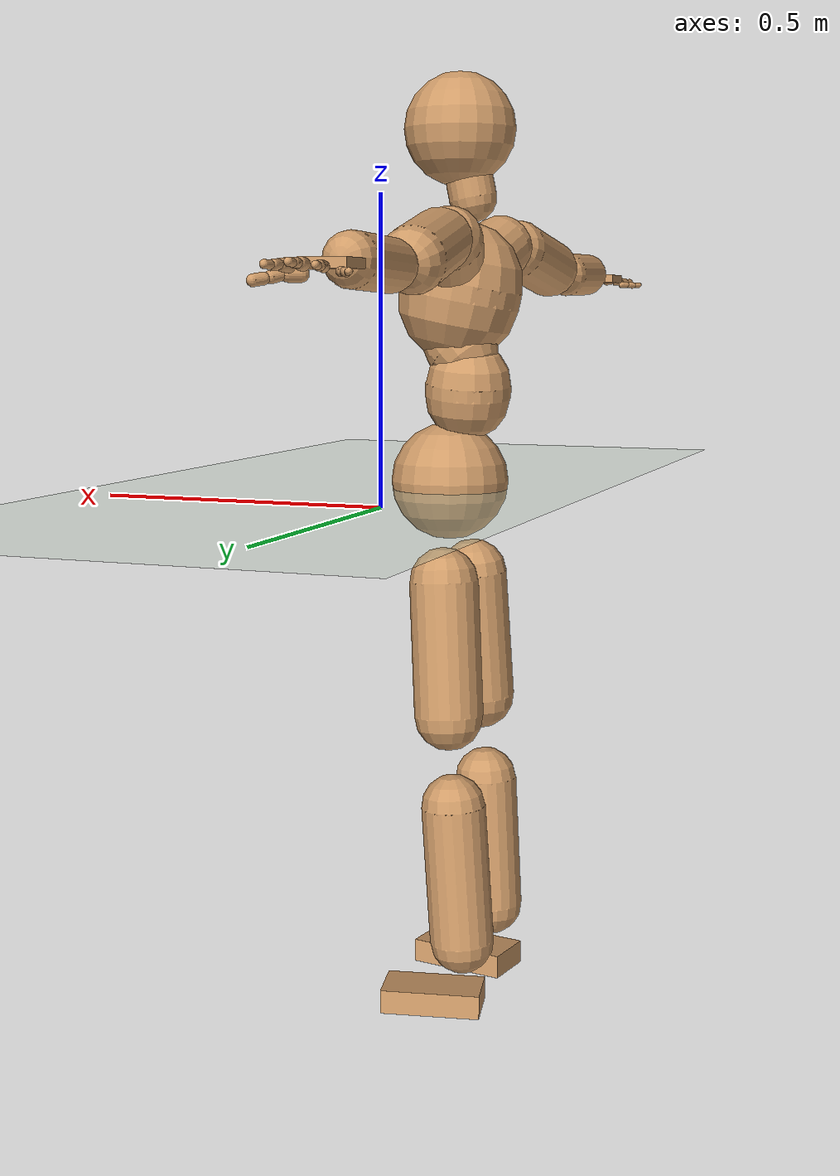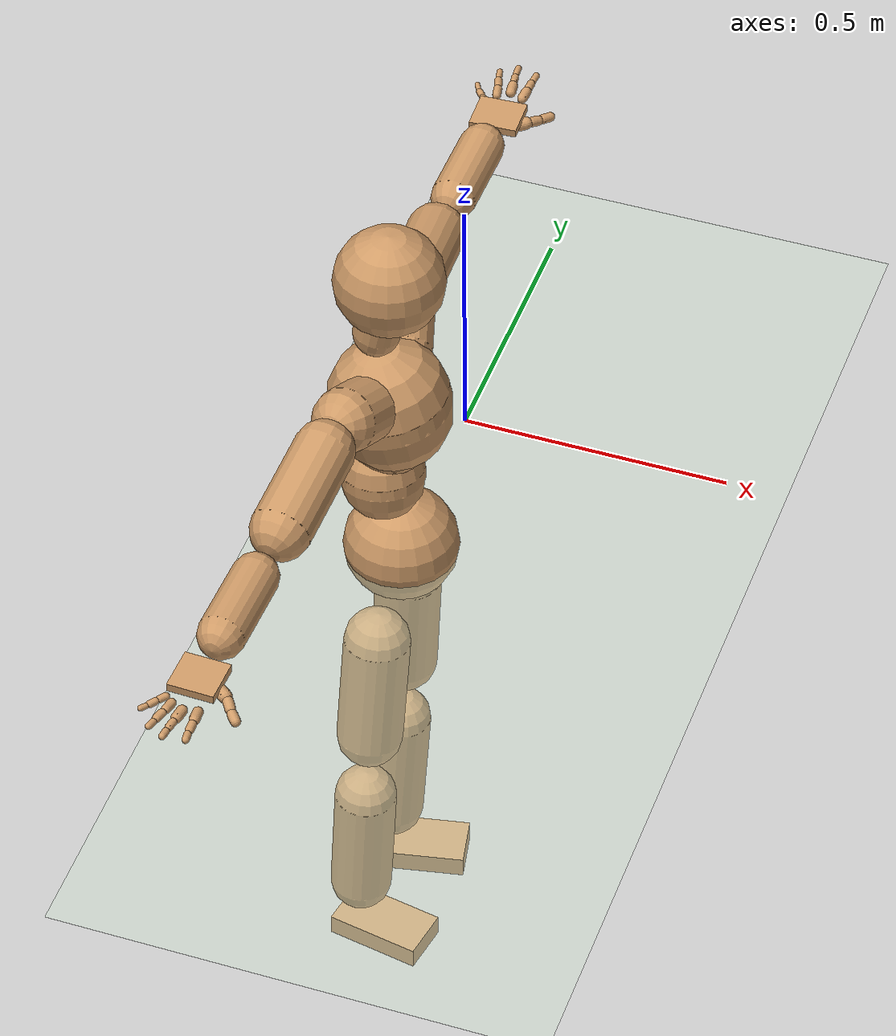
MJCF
<mujoco model="humanoid">
  <compiler coordinate="local" angle="radian"/>
  <default>
    <joint damping="0.0" armature="0.01" stiffness="0.0" limited="true"/>
    <geom conaffinity="1" condim="3" contype="7" margin="0.001" rgba="0.8 0.6 .4 1"/>
  </default>
  <asset>
    <texture type="skybox" builtin="gradient" rgb1=".4 .5 .6" rgb2="0 0 0" width="100" height="100"/>
    <texture builtin="flat" height="1278" mark="cross" markrgb="1 1 1" name="texgeom" random="0.01" rgb1="0.8 0.6 0.4" rgb2="0.8 0.6 0.4" type="cube" width="127"/>
    <texture builtin="checker" height="100" name="texplane" rgb1="0 0 0" rgb2="0.8 0.8 0.8" type="2d" width="100"/>
    <material name="MatPlane" reflectance="0.5" shininess="1" specular="1" texrepeat="60 60" texture="texplane"/>
    <material name="geom" texture="texgeom" texuniform="true"/>
  </asset>
  <worldbody>
    <light cutoff="100" diffuse="1 1 1" dir="-0 0 -1.3" directional="true" exponent="1" pos="0 0 1.3" specular=".1 .1 .1"/>
    <geom conaffinity="1" condim="3" name="floor" pos="0 0 0" rgba="0.8 0.9 0.8 1" size="100 100 .2" type="plane" material="MatPlane"/>
    <body name="Pelvis" pos="0.0005 -0.3438 0.0123">
      <freejoint name="Pelvis"/>
      <geom type="sphere" contype="1" conaffinity="1" density="500" size="0.1051" pos="0.0000 0.0000 0.0000" name="Pelvis"/>
      <body name="L_Hip" pos="-0.0133 0.0787 -0.0914">
        <joint name="L_Hip_x" type="hinge" pos="0 0 0" axis="1 0 0" stiffness="800" damping="80" armature="0.02" range="-180.0000 180.0000"/>
        <joint name="L_Hip_y" type="hinge" pos="0 0 0" axis="0 1 0" stiffness="800" damping="80" armature="0.02" range="-180.0000 180.0000"/>
        <joint name="L_Hip_z" type="hinge" pos="0 0 0" axis="0 0 1" stiffness="800" damping="80" armature="0.02" range="-180.0000 180.0000"/>
        <geom type="capsule" contype="1" conaffinity="1" density="500" fromto="-0.0051 0.0048 -0.0795 -0.0205 0.0193 -0.3181" size="0.0611" name="L_Hip"/>
        <body name="L_Knee" pos="-0.0257 0.0241 -0.3976">
          <joint name="L_Knee_x" type="hinge" pos="0 0 0" axis="1 0 0" stiffness="800" damping="80" armature="0.02" range="-180.0000 180.0000"/>
          <joint name="L_Knee_y" type="hinge" pos="0 0 0" axis="0 1 0" stiffness="800" damping="80" armature="0.02" range="-180.0000 180.0000"/>
          <joint name="L_Knee_z" type="hinge" pos="0 0 0" axis="0 0 1" stiffness="800" damping="80" armature="0.02" range="-180.0000 180.0000"/>
          <geom type="capsule" contype="1" conaffinity="1" density="500" fromto="-0.0053 -0.0017 -0.0832 -0.0212 -0.0066 -0.3328" size="0.0572" name="L_Knee"/>
          <body name="L_Ankle" pos="-0.0265 -0.0083 -0.4161">
            <joint name="L_Ankle_x" type="hinge" pos="0 0 0" axis="1 0 0" stiffness="800" damping="80" armature="0.02" range="-180.0000 180.0000"/>
            <joint name="L_Ankle_y" type="hinge" pos="0 0 0" axis="0 1 0" stiffness="800" damping="80" armature="0.02" range="-180.0000 180.0000"/>
            <joint name="L_Ankle_z" type="hinge" pos="0 0 0" axis="0 0 1" stiffness="800" damping="80" armature="0.02" range="-180.0000 180.0000"/>
            <geom type="box" contype="1" conaffinity="1" density="500" pos="0.0565 0.0115 -0.0227" size="0.089 0.0485 0.0212" quat="0.9950 0.0000 0.0000 0.1002" name="L_Ankle"/>
            <body name="L_Toe" pos="0.113 0.023 -0.0454">
              <joint name="L_Toe_x" type="hinge" pos="0 0 0" axis="1 0 0" stiffness="500" damping="50" armature="0.02" range="-180.0000 180.0000"/>
              <joint name="L_Toe_y" type="hinge" pos="0 0 0" axis="0 1 0" stiffness="500" damping="50" armature="0.02" range="-180.0000 180.0000"/>
              <joint name="L_Toe_z" type="hinge" pos="0 0 0" axis="0 0 1" stiffness="500" damping="50" armature="0.02" range="-180.0000 180.0000"/>
              <geom type="box" contype="1" conaffinity="1" density="500" pos="0.0000 0.0000 0.0223" size="0.0009 0.0024 0.001" quat="0.9943 0.0000 0.0000 0.1068" name="L_Toe"/>
            </body>
          </body>
        </body>
      </body>
      <body name="R_Hip" pos="-0.0145 -0.078 -0.0979">
        <joint name="R_Hip_x" type="hinge" pos="0 0 0" axis="1 0 0" stiffness="800" damping="80" armature="0.02" range="-180.0000 180.0000"/>
        <joint name="R_Hip_y" type="hinge" pos="0 0 0" axis="0 1 0" stiffness="800" damping="80" armature="0.02" range="-180.0000 180.0000"/>
        <joint name="R_Hip_z" type="hinge" pos="0 0 0" axis="0 0 1" stiffness="800" damping="80" armature="0.02" range="-180.0000 180.0000"/>
        <geom type="capsule" contype="1" conaffinity="1" density="500" fromto="-0.0039 -0.0056 -0.0787 -0.0156 -0.0225 -0.3148" size="0.0609" name="R_Hip"/>
        <body name="R_Knee" pos="-0.0195 -0.0281 -0.3935">
          <joint name="R_Knee_x" type="hinge" pos="0 0 0" axis="1 0 0" stiffness="800" damping="80" armature="0.02" range="-180.0000 180.0000"/>
          <joint name="R_Knee_y" type="hinge" pos="0 0 0" axis="0 1 0" stiffness="800" damping="80" armature="0.02" range="-180.0000 180.0000"/>
          <joint name="R_Knee_z" type="hinge" pos="0 0 0" axis="0 0 1" stiffness="800" damping="80" armature="0.02" range="-180.0000 180.0000"/>
          <geom type="capsule" contype="1" conaffinity="1" density="500" fromto="-0.0046 0.0007 -0.0814 -0.0183 0.0026 -0.3256" size="0.0572" name="R_Knee"/>
          <body name="R_Ankle" pos="-0.0228 0.0033 -0.407">
            <joint name="R_Ankle_x" type="hinge" pos="0 0 0" axis="1 0 0" stiffness="800" damping="80" armature="0.02" range="-180.0000 180.0000"/>
            <joint name="R_Ankle_y" type="hinge" pos="0 0 0" axis="0 1 0" stiffness="800" damping="80" armature="0.02" range="-180.0000 180.0000"/>
            <joint name="R_Ankle_z" type="hinge" pos="0 0 0" axis="0 0 1" stiffness="800" damping="80" armature="0.02" range="-180.0000 180.0000"/>
            <geom type="box" contype="1" conaffinity="1" density="500" pos="0.0534 -0.0093 -0.0244" size="0.089 0.0485 0.0212" quat="0.9963 0.0000 0.0000 -0.0860" name="R_Ankle"/>
            <body name="R_Toe" pos="0.1068 -0.0186 -0.0489">
              <joint name="R_Toe_x" type="hinge" pos="0 0 0" axis="1 0 0" stiffness="500" damping="50" armature="0.02" range="-180.0000 180.0000"/>
              <joint name="R_Toe_y" type="hinge" pos="0 0 0" axis="0 1 0" stiffness="500" damping="50" armature="0.02" range="-180.0000 180.0000"/>
              <joint name="R_Toe_z" type="hinge" pos="0 0 0" axis="0 0 1" stiffness="500" damping="50" armature="0.02" range="-180.0000 180.0000"/>
              <geom type="box" contype="1" conaffinity="1" density="500" pos="0.0000 0.0000 0.0240" size="0.0009 0.0024 0.001" quat="0.9971 0.0000 0.0000 -0.0755" name="R_Toe"/>
            </body>
          </body>
        </body>
      </body>
      <body name="Torso" pos="-0.0291 -0.0061 0.1066">
        <joint name="Torso_x" type="hinge" pos="0 0 0" axis="1 0 0" stiffness="1000" damping="100" armature="0.02" range="-180.0000 180.0000"/>
        <joint name="Torso_y" type="hinge" pos="0 0 0" axis="0 1 0" stiffness="1000" damping="100" armature="0.02" range="-180.0000 180.0000"/>
        <joint name="Torso_z" type="hinge" pos="0 0 0" axis="0 0 1" stiffness="1000" damping="100" armature="0.02" range="-180.0000 180.0000"/>
        <geom type="capsule" contype="1" conaffinity="1" density="500" fromto="-0.0053 0.0076 0.0671 -0.0035 0.0051 0.0447" size="0.0763" name="Torso"/>
        <body name="Spine" pos="-0.0088 0.0127 0.1118">
          <joint name="Spine_x" type="hinge" pos="0 0 0" axis="1 0 0" stiffness="1000" damping="100" armature="0.02" range="-180.0000 180.0000"/>
          <joint name="Spine_y" type="hinge" pos="0 0 0" axis="0 1 0" stiffness="1000" damping="100" armature="0.02" range="-180.0000 180.0000"/>
          <joint name="Spine_z" type="hinge" pos="0 0 0" axis="0 0 1" stiffness="1000" damping="100" armature="0.02" range="-180.0000 180.0000"/>
          <geom type="capsule" contype="1" conaffinity="1" density="500" fromto="0.0216 -0.0043 0.0271 0.0144 -0.0029 0.0181" size="0.0643" name="Spine"/>
          <body name="Chest" pos="0.0361 -0.0072 0.0452">
            <joint name="Chest_x" type="hinge" pos="0 0 0" axis="1 0 0" stiffness="1000" damping="100" armature="0.02" range="-180.0000 180.0000"/>
            <joint name="Chest_y" type="hinge" pos="0 0 0" axis="0 1 0" stiffness="1000" damping="100" armature="0.02" range="-180.0000 180.0000"/>
            <joint name="Chest_z" type="hinge" pos="0 0 0" axis="0 0 1" stiffness="1000" damping="100" armature="0.02" range="-180.0000 180.0000"/>
            <geom type="capsule" contype="1" conaffinity="1" density="500" fromto="-0.0176 -0.0018 0.0882 -0.0117 -0.0012 0.0588" size="0.109" name="Chest"/>
            <body name="Neck" pos="-0.0422 -0.0063 0.2051">
              <joint name="Neck_x" type="hinge" pos="0 0 0" axis="1 0 0" stiffness="500" damping="50" armature="0.02" range="-180.0000 180.0000"/>
              <joint name="Neck_y" type="hinge" pos="0 0 0" axis="0 1 0" stiffness="500" damping="50" armature="0.02" range="-180.0000 180.0000"/>
              <joint name="Neck_z" type="hinge" pos="0 0 0" axis="0 0 1" stiffness="500" damping="50" armature="0.02" range="-180.0000 180.0000"/>
              <geom type="capsule" contype="1" conaffinity="1" density="500" fromto="0.0055 0.0018 0.0299 0.0222 0.0073 0.1194" size="0.0419" name="Neck"/>
              <body name="Head" pos="0.0277 0.0091 0.1493">
                <joint name="Head_x" type="hinge" pos="0 0 0" axis="1 0 0" stiffness="500" damping="50" armature="0.02" range="-180.0000 180.0000"/>
                <joint name="Head_y" type="hinge" pos="0 0 0" axis="0 1 0" stiffness="500" damping="50" armature="0.02" range="-180.0000 180.0000"/>
                <joint name="Head_z" type="hinge" pos="0 0 0" axis="0 0 1" stiffness="500" damping="50" armature="0.02" range="-180.0000 180.0000"/>
                <geom type="sphere" contype="1" conaffinity="1" density="500" size="0.0983" pos="0.0000 0.0000 0.0000" name="Head"/>
              </body>
            </body>
            <body name="L_Thorax" pos="-0.019 0.0574 0.1203">
              <joint name="L_Thorax_x" type="hinge" pos="0 0 0" axis="1 0 0" stiffness="500" damping="50" armature="0.02" range="-180.0000 180.0000"/>
              <joint name="L_Thorax_y" type="hinge" pos="0 0 0" axis="0 1 0" stiffness="500" damping="50" armature="0.02" range="-180.0000 180.0000"/>
              <joint name="L_Thorax_z" type="hinge" pos="0 0 0" axis="0 0 1" stiffness="500" damping="50" armature="0.02" range="-180.0000 180.0000"/>
              <geom type="capsule" contype="1" conaffinity="1" density="500" fromto="-0.0057 0.0202 0.0094 -0.0228 0.0807 0.0375" size="0.0575" name="L_Thorax"/>
              <body name="L_Shoulder" pos="-0.0285 0.1009 0.0468">
                <joint name="L_Shoulder_x" type="hinge" pos="0 0 0" axis="1 0 0" stiffness="500" damping="50" armature="0.02" range="-180.0000 180.0000"/>
                <joint name="L_Shoulder_y" type="hinge" pos="0 0 0" axis="0 1 0" stiffness="500" damping="50" armature="0.02" range="-180.0000 180.0000"/>
                <joint name="L_Shoulder_z" type="hinge" pos="0 0 0" axis="0 0 1" stiffness="500" damping="50" armature="0.02" range="-180.0000 180.0000"/>
                <geom type="capsule" contype="1" conaffinity="1" density="500" fromto="-0.0060 0.0600 -0.0123 -0.0241 0.2401 -0.0492" size="0.0542" name="L_Shoulder"/>
                <body name="L_Elbow" pos="-0.0301 0.3001 -0.0615">
                  <joint name="L_Elbow_x" type="hinge" pos="0 0 0" axis="1 0 0" stiffness="500" damping="50" armature="0.02" range="-720.0000 720.0000"/>
                  <joint name="L_Elbow_y" type="hinge" pos="0 0 0" axis="0 1 0" stiffness="500" damping="50" armature="0.02" range="-720.0000 720.0000"/>
                  <joint name="L_Elbow_z" type="hinge" pos="0 0 0" axis="0 0 1" stiffness="500" damping="50" armature="0.02" range="-720.0000 720.0000"/>
                  <geom type="capsule" contype="1" conaffinity="1" density="500" fromto="0.0009 0.0493 0.0018 0.0038 0.1970 0.0071" size="0.0418" name="L_Elbow"/>
                  <body name="L_Wrist" pos="0.0047 0.2463 0.0088">
                    <joint name="L_Wrist_x" type="hinge" pos="0 0 0" axis="1 0 0" stiffness="300" damping="30" armature="0.02" range="-180.0000 180.0000"/>
                    <joint name="L_Wrist_y" type="hinge" pos="0 0 0" axis="0 1 0" stiffness="300" damping="30" armature="0.02" range="-180.0000 180.0000"/>
                    <joint name="L_Wrist_z" type="hinge" pos="0 0 0" axis="0 0 1" stiffness="300" damping="30" armature="0.02" range="-180.0000 180.0000"/>
                    <geom type="box" contype="1" conaffinity="1" density="500" pos="-0.0021 0.0469 -0.0088" size="0.0392 0.0446 0.0075" quat="0.7231 0.0000 0.0000 -0.6908" name="L_Wrist"/>
                    <body name="L_Index1" pos="0.0207 0.1095 -0.0152">
                      <joint name="L_Index1_x" type="hinge" pos="0 0 0" axis="1 0 0" stiffness="100" damping="10" armature="0.02" range="-180.0000 180.0000"/>
                      <joint name="L_Index1_y" type="hinge" pos="0 0 0" axis="0 1 0" stiffness="100" damping="10" armature="0.02" range="-180.0000 180.0000"/>
                      <joint name="L_Index1_z" type="hinge" pos="0 0 0" axis="0 0 1" stiffness="100" damping="10" armature="0.02" range="-180.0000 180.0000"/>
                      <geom type="capsule" contype="1" conaffinity="1" density="500" fromto="0.0005 0.0064 0.0006 0.0020 0.0257 0.0025" size="0.0092" name="L_Index1"/>
                      <body name="L_Index2" pos="0.0025 0.0321 0.0031">
                        <joint name="L_Index2_x" type="hinge" pos="0 0 0" axis="1 0 0" stiffness="100" damping="10" armature="0.02" range="-180.0000 180.0000"/>
                        <joint name="L_Index2_y" type="hinge" pos="0 0 0" axis="0 1 0" stiffness="100" damping="10" armature="0.02" range="-180.0000 180.0000"/>
                        <joint name="L_Index2_z" type="hinge" pos="0 0 0" axis="0 0 1" stiffness="100" damping="10" armature="0.02" range="-180.0000 180.0000"/>
                        <geom type="capsule" contype="1" conaffinity="1" density="500" fromto="0.0001 0.0045 -0.0003 0.0003 0.0181 -0.0011" size="0.0076" name="L_Index2"/>
                        <body name="L_Index3" pos="0.0003 0.0227 -0.0013">
                          <joint name="L_Index3_x" type="hinge" pos="0 0 0" axis="1 0 0" stiffness="100" damping="10" armature="0.02" range="-180.0000 180.0000"/>
                          <joint name="L_Index3_y" type="hinge" pos="0 0 0" axis="0 1 0" stiffness="100" damping="10" armature="0.02" range="-180.0000 180.0000"/>
                          <joint name="L_Index3_z" type="hinge" pos="0 0 0" axis="0 0 1" stiffness="100" damping="10" armature="0.02" range="-180.0000 180.0000"/>
                          <geom type="capsule" contype="1" conaffinity="1" density="500" fromto="0.0005 0.0049 0.0001 0.0019 0.0197 0.0005" size="0.0063" name="L_Index3"/>
                        </body>
                      </body>
                    </body>
                    <body name="L_Middle1" pos="-0.0027 0.1168 -0.0125">
                      <joint name="L_Middle1_x" type="hinge" pos="0 0 0" axis="1 0 0" stiffness="100" damping="10" armature="0.02" range="-180.0000 180.0000"/>
                      <joint name="L_Middle1_y" type="hinge" pos="0 0 0" axis="0 1 0" stiffness="100" damping="10" armature="0.02" range="-180.0000 180.0000"/>
                      <joint name="L_Middle1_z" type="hinge" pos="0 0 0" axis="0 0 1" stiffness="100" damping="10" armature="0.02" range="-180.0000 180.0000"/>
                      <geom type="capsule" contype="1" conaffinity="1" density="500" fromto="-0.0008 0.0061 0.0003 -0.0032 0.0244 0.0013" size="0.0094" name="L_Middle1"/>
                      <body name="L_Middle2" pos="-0.004 0.0305 0.0017">
                        <joint name="L_Middle2_x" type="hinge" pos="0 0 0" axis="1 0 0" stiffness="100" damping="10" armature="0.02" range="-180.0000 180.0000"/>
                        <joint name="L_Middle2_y" type="hinge" pos="0 0 0" axis="0 1 0" stiffness="100" damping="10" armature="0.02" range="-180.0000 180.0000"/>
                        <joint name="L_Middle2_z" type="hinge" pos="0 0 0" axis="0 0 1" stiffness="100" damping="10" armature="0.02" range="-180.0000 180.0000"/>
                        <geom type="capsule" contype="1" conaffinity="1" density="500" fromto="-0.0008 0.0047 -0.0001 -0.0031 0.0189 -0.0005" size="0.0069" name="L_Middle2"/>
                        <body name="L_Middle3" pos="-0.0039 0.0236 -0.0006">
                          <joint name="L_Middle3_x" type="hinge" pos="0 0 0" axis="1 0 0" stiffness="100" damping="10" armature="0.02" range="-180.0000 180.0000"/>
                          <joint name="L_Middle3_y" type="hinge" pos="0 0 0" axis="0 1 0" stiffness="100" damping="10" armature="0.02" range="-180.0000 180.0000"/>
                          <joint name="L_Middle3_z" type="hinge" pos="0 0 0" axis="0 0 1" stiffness="100" damping="10" armature="0.02" range="-180.0000 180.0000"/>
                          <geom type="capsule" contype="1" conaffinity="1" density="500" fromto="-0.0004 0.0051 0.0003 -0.0015 0.0205 0.0011" size="0.006" name="L_Middle3"/>
                        </body>
                      </body>
                    </body>
                    <body name="L_Pinky1" pos="-0.0414 0.0909 -0.0212">
                      <joint name="L_Pinky1_x" type="hinge" pos="0 0 0" axis="1 0 0" stiffness="100" damping="10" armature="0.02" range="-180.0000 180.0000"/>
                      <joint name="L_Pinky1_y" type="hinge" pos="0 0 0" axis="0 1 0" stiffness="100" damping="10" armature="0.02" range="-180.0000 180.0000"/>
                      <joint name="L_Pinky1_z" type="hinge" pos="0 0 0" axis="0 0 1" stiffness="100" damping="10" armature="0.02" range="-180.0000 180.0000"/>
                      <geom type="capsule" contype="1" conaffinity="1" density="500" fromto="-0.0024 0.0030 -0.0001 -0.0097 0.0121 -0.0004" size="0.0066" name="L_Pinky1"/>
                      <body name="L_Pinky2" pos="-0.0121 0.0151 -0.0005">
                        <joint name="L_Pinky2_x" type="hinge" pos="0 0 0" axis="1 0 0" stiffness="100" damping="10" armature="0.02" range="-180.0000 180.0000"/>
                        <joint name="L_Pinky2_y" type="hinge" pos="0 0 0" axis="0 1 0" stiffness="100" damping="10" armature="0.02" range="-180.0000 180.0000"/>
                        <joint name="L_Pinky2_z" type="hinge" pos="0 0 0" axis="0 0 1" stiffness="100" damping="10" armature="0.02" range="-180.0000 180.0000"/>
                        <geom type="capsule" contype="1" conaffinity="1" density="500" fromto="-0.0023 0.0030 -0.0002 -0.0094 0.0121 -0.0008" size="0.0064" name="L_Pinky2"/>
                        <body name="L_Pinky3" pos="-0.0117 0.0152 -0.001">
                          <joint name="L_Pinky3_x" type="hinge" pos="0 0 0" axis="1 0 0" stiffness="100" damping="10" armature="0.02" range="-180.0000 180.0000"/>
                          <joint name="L_Pinky3_y" type="hinge" pos="0 0 0" axis="0 1 0" stiffness="100" damping="10" armature="0.02" range="-180.0000 180.0000"/>
                          <joint name="L_Pinky3_z" type="hinge" pos="0 0 0" axis="0 0 1" stiffness="100" damping="10" armature="0.02" range="-180.0000 180.0000"/>
                          <geom type="capsule" contype="1" conaffinity="1" density="500" fromto="-0.0019 0.0034 0.0002 -0.0078 0.0137 0.0008" size="0.0049" name="L_Pinky3"/>
                        </body>
                      </body>
                    </body>
                    <body name="L_Ring1" pos="-0.0258 0.1046 -0.0157">
                      <joint name="L_Ring1_x" type="hinge" pos="0 0 0" axis="1 0 0" stiffness="100" damping="10" armature="0.02" range="-180.0000 180.0000"/>
                      <joint name="L_Ring1_y" type="hinge" pos="0 0 0" axis="0 1 0" stiffness="100" damping="10" armature="0.02" range="-180.0000 180.0000"/>
                      <joint name="L_Ring1_z" type="hinge" pos="0 0 0" axis="0 0 1" stiffness="100" damping="10" armature="0.02" range="-180.0000 180.0000"/>
                      <geom type="capsule" contype="1" conaffinity="1" density="500" fromto="-0.0011 0.0056 0.0004 -0.0045 0.0223 0.0015" size="0.008" name="L_Ring1"/>
                      <body name="L_Ring2" pos="-0.0056 0.0279 0.0019">
                        <joint name="L_Ring2_x" type="hinge" pos="0 0 0" axis="1 0 0" stiffness="100" damping="10" armature="0.02" range="-180.0000 180.0000"/>
                        <joint name="L_Ring2_y" type="hinge" pos="0 0 0" axis="0 1 0" stiffness="100" damping="10" armature="0.02" range="-180.0000 180.0000"/>
                        <joint name="L_Ring2_z" type="hinge" pos="0 0 0" axis="0 0 1" stiffness="100" damping="10" armature="0.02" range="-180.0000 180.0000"/>
                        <geom type="capsule" contype="1" conaffinity="1" density="500" fromto="-0.0014 0.0045 -0.0002 -0.0058 0.0182 -0.0008" size="0.0074" name="L_Ring2"/>
                        <body name="L_Ring3" pos="-0.0072 0.0227 -0.0011">
                          <joint name="L_Ring3_x" type="hinge" pos="0 0 0" axis="1 0 0" stiffness="100" damping="10" armature="0.02" range="-180.0000 180.0000"/>
                          <joint name="L_Ring3_y" type="hinge" pos="0 0 0" axis="0 1 0" stiffness="100" damping="10" armature="0.02" range="-180.0000 180.0000"/>
                          <joint name="L_Ring3_z" type="hinge" pos="0 0 0" axis="0 0 1" stiffness="100" damping="10" armature="0.02" range="-180.0000 180.0000"/>
                          <geom type="capsule" contype="1" conaffinity="1" density="500" fromto="-0.0010 0.0049 0.0002 -0.0042 0.0198 0.0008" size="0.0057" name="L_Ring3"/>
                        </body>
                      </body>
                    </body>
                    <body name="L_Thumb1" pos="0.0277 0.0468 -0.0234">
                      <joint name="L_Thumb1_x" type="hinge" pos="0 0 0" axis="1 0 0" stiffness="100" damping="10" armature="0.02" range="-180.0000 180.0000"/>
                      <joint name="L_Thumb1_y" type="hinge" pos="0 0 0" axis="0 1 0" stiffness="100" damping="10" armature="0.02" range="-180.0000 180.0000"/>
                      <joint name="L_Thumb1_z" type="hinge" pos="0 0 0" axis="0 0 1" stiffness="100" damping="10" armature="0.02" range="-180.0000 180.0000"/>
                      <geom type="capsule" contype="1" conaffinity="1" density="500" fromto="0.0048 0.0035 0.0001 0.0194 0.0142 0.0004" size="0.012" name="L_Thumb1"/>
                      <body name="L_Thumb2" pos="0.0242 0.0177 0.0005">
                        <joint name="L_Thumb2_x" type="hinge" pos="0 0 0" axis="1 0 0" stiffness="100" damping="10" armature="0.02" range="-180.0000 180.0000"/>
                        <joint name="L_Thumb2_y" type="hinge" pos="0 0 0" axis="0 1 0" stiffness="100" damping="10" armature="0.02" range="-180.0000 180.0000"/>
                        <joint name="L_Thumb2_z" type="hinge" pos="0 0 0" axis="0 0 1" stiffness="100" damping="10" armature="0.02" range="-180.0000 180.0000"/>
                        <geom type="capsule" contype="1" conaffinity="1" density="500" fromto="0.0029 0.0041 -0.0012 0.0118 0.0165 -0.0049" size="0.0094" name="L_Thumb2"/>
                        <body name="L_Thumb3" pos="0.0147 0.0207 -0.0061">
                          <joint name="L_Thumb3_x" type="hinge" pos="0 0 0" axis="1 0 0" stiffness="100" damping="10" armature="0.02" range="-180.0000 180.0000"/>
                          <joint name="L_Thumb3_y" type="hinge" pos="0 0 0" axis="0 1 0" stiffness="100" damping="10" armature="0.02" range="-180.0000 180.0000"/>
                          <joint name="L_Thumb3_z" type="hinge" pos="0 0 0" axis="0 0 1" stiffness="100" damping="10" armature="0.02" range="-180.0000 180.0000"/>
                          <geom type="capsule" contype="1" conaffinity="1" density="500" fromto="0.0033 0.0045 -0.0008 0.0134 0.0181 -0.0033" size="0.0089" name="L_Thumb3"/>
                        </body>
                      </body>
                    </body>
                  </body>
                </body>
              </body>
            </body>
            <body name="R_Thorax" pos="-0.0266 -0.0603 0.1158">
              <joint name="R_Thorax_x" type="hinge" pos="0 0 0" axis="1 0 0" stiffness="500" damping="50" armature="0.02" range="-180.0000 180.0000"/>
              <joint name="R_Thorax_y" type="hinge" pos="0 0 0" axis="0 1 0" stiffness="500" damping="50" armature="0.02" range="-180.0000 180.0000"/>
              <joint name="R_Thorax_z" type="hinge" pos="0 0 0" axis="0 0 1" stiffness="500" damping="50" armature="0.02" range="-180.0000 180.0000"/>
              <geom type="capsule" contype="1" conaffinity="1" density="500" fromto="-0.0041 -0.0219 0.0096 -0.0162 -0.0878 0.0382" size="0.0586" name="R_Thorax"/>
              <body name="R_Shoulder" pos="-0.0203 -0.1097 0.0478">
                <joint name="R_Shoulder_x" type="hinge" pos="0 0 0" axis="1 0 0" stiffness="500" damping="50" armature="0.02" range="-180.0000 180.0000"/>
                <joint name="R_Shoulder_y" type="hinge" pos="0 0 0" axis="0 1 0" stiffness="500" damping="50" armature="0.02" range="-180.0000 180.0000"/>
                <joint name="R_Shoulder_z" type="hinge" pos="0 0 0" axis="0 0 1" stiffness="500" damping="50" armature="0.02" range="-180.0000 180.0000"/>
                <geom type="capsule" contype="1" conaffinity="1" density="500" fromto="-0.0046 -0.0579 -0.0109 -0.0183 -0.2315 -0.0436" size="0.0546" name="R_Shoulder"/>
                <body name="R_Elbow" pos="-0.0228 -0.2893 -0.0545">
                  <joint name="R_Elbow_x" type="hinge" pos="0 0 0" axis="1 0 0" stiffness="500" damping="50" armature="0.02" range="-720.0000 720.0000"/>
                  <joint name="R_Elbow_y" type="hinge" pos="0 0 0" axis="0 1 0" stiffness="500" damping="50" armature="0.02" range="-720.0000 720.0000"/>
                  <joint name="R_Elbow_z" type="hinge" pos="0 0 0" axis="0 0 1" stiffness="500" damping="50" armature="0.02" range="-720.0000 720.0000"/>
                  <geom type="capsule" contype="1" conaffinity="1" density="500" fromto="-0.0010 -0.0494 0.0009 -0.0040 -0.1975 0.0036" size="0.042" name="R_Elbow"/>
                  <body name="R_Wrist" pos="-0.005 -0.2468 0.0045">
                    <joint name="R_Wrist_x" type="hinge" pos="0 0 0" axis="1 0 0" stiffness="300" damping="30" armature="0.02" range="-180.0000 180.0000"/>
                    <joint name="R_Wrist_y" type="hinge" pos="0 0 0" axis="0 1 0" stiffness="300" damping="30" armature="0.02" range="-180.0000 180.0000"/>
                    <joint name="R_Wrist_z" type="hinge" pos="0 0 0" axis="0 0 1" stiffness="300" damping="30" armature="0.02" range="-180.0000 180.0000"/>
                    <geom type="box" contype="1" conaffinity="1" density="500" pos="-0.0013 -0.0461 -0.0084" size="0.0392 0.0415 0.0078" quat="0.7170 0.0000 0.0000 0.6971" name="R_Wrist"/>
                    <body name="R_Index1" pos="0.0224 -0.108 -0.0143">
                      <joint name="R_Index1_x" type="hinge" pos="0 0 0" axis="1 0 0" stiffness="100" damping="10" armature="0.02" range="-180.0000 180.0000"/>
                      <joint name="R_Index1_y" type="hinge" pos="0 0 0" axis="0 1 0" stiffness="100" damping="10" armature="0.02" range="-180.0000 180.0000"/>
                      <joint name="R_Index1_z" type="hinge" pos="0 0 0" axis="0 0 1" stiffness="100" damping="10" armature="0.02" range="-180.0000 180.0000"/>
                      <geom type="capsule" contype="1" conaffinity="1" density="500" fromto="0.0005 -0.0064 0.0006 0.0020 -0.0257 0.0025" size="0.0092" name="R_Index1"/>
                      <body name="R_Index2" pos="0.0025 -0.0321 0.0031">
                        <joint name="R_Index2_x" type="hinge" pos="0 0 0" axis="1 0 0" stiffness="100" damping="10" armature="0.02" range="-180.0000 180.0000"/>
                        <joint name="R_Index2_y" type="hinge" pos="0 0 0" axis="0 1 0" stiffness="100" damping="10" armature="0.02" range="-180.0000 180.0000"/>
                        <joint name="R_Index2_z" type="hinge" pos="0 0 0" axis="0 0 1" stiffness="100" damping="10" armature="0.02" range="-180.0000 180.0000"/>
                        <geom type="capsule" contype="1" conaffinity="1" density="500" fromto="0.0001 -0.0045 -0.0003 0.0003 -0.0181 -0.0011" size="0.0076" name="R_Index2"/>
                        <body name="R_Index3" pos="0.0003 -0.0227 -0.0013">
                          <joint name="R_Index3_x" type="hinge" pos="0 0 0" axis="1 0 0" stiffness="100" damping="10" armature="0.02" range="-180.0000 180.0000"/>
                          <joint name="R_Index3_y" type="hinge" pos="0 0 0" axis="0 1 0" stiffness="100" damping="10" armature="0.02" range="-180.0000 180.0000"/>
                          <joint name="R_Index3_z" type="hinge" pos="0 0 0" axis="0 0 1" stiffness="100" damping="10" armature="0.02" range="-180.0000 180.0000"/>
                          <geom type="capsule" contype="1" conaffinity="1" density="500" fromto="0.0005 -0.0041 0.0001 0.0019 -0.0165 0.0005" size="0.0066" name="R_Index3"/>
                        </body>
                      </body>
                    </body>
                    <body name="R_Middle1" pos="-0.001 -0.1154 -0.0117">
                      <joint name="R_Middle1_x" type="hinge" pos="0 0 0" axis="1 0 0" stiffness="100" damping="10" armature="0.02" range="-180.0000 180.0000"/>
                      <joint name="R_Middle1_y" type="hinge" pos="0 0 0" axis="0 1 0" stiffness="100" damping="10" armature="0.02" range="-180.0000 180.0000"/>
                      <joint name="R_Middle1_z" type="hinge" pos="0 0 0" axis="0 0 1" stiffness="100" damping="10" armature="0.02" range="-180.0000 180.0000"/>
                      <geom type="capsule" contype="1" conaffinity="1" density="500" fromto="-0.0008 -0.0061 0.0003 -0.0032 -0.0244 0.0013" size="0.0094" name="R_Middle1"/>
                      <body name="R_Middle2" pos="-0.004 -0.0305 0.0017">
                        <joint name="R_Middle2_x" type="hinge" pos="0 0 0" axis="1 0 0" stiffness="100" damping="10" armature="0.02" range="-180.0000 180.0000"/>
                        <joint name="R_Middle2_y" type="hinge" pos="0 0 0" axis="0 1 0" stiffness="100" damping="10" armature="0.02" range="-180.0000 180.0000"/>
                        <joint name="R_Middle2_z" type="hinge" pos="0 0 0" axis="0 0 1" stiffness="100" damping="10" armature="0.02" range="-180.0000 180.0000"/>
                        <geom type="capsule" contype="1" conaffinity="1" density="500" fromto="-0.0008 -0.0047 -0.0001 -0.0031 -0.0189 -0.0005" size="0.0069" name="R_Middle2"/>
                        <body name="R_Middle3" pos="-0.0039 -0.0236 -0.0006">
                          <joint name="R_Middle3_x" type="hinge" pos="0 0 0" axis="1 0 0" stiffness="100" damping="10" armature="0.02" range="-180.0000 180.0000"/>
                          <joint name="R_Middle3_y" type="hinge" pos="0 0 0" axis="0 1 0" stiffness="100" damping="10" armature="0.02" range="-180.0000 180.0000"/>
                          <joint name="R_Middle3_z" type="hinge" pos="0 0 0" axis="0 0 1" stiffness="100" damping="10" armature="0.02" range="-180.0000 180.0000"/>
                          <geom type="capsule" contype="1" conaffinity="1" density="500" fromto="-0.0004 -0.0043 0.0003 -0.0015 -0.0173 0.0011" size="0.0063" name="R_Middle3"/>
                        </body>
                      </body>
                    </body>
                    <body name="R_Pinky1" pos="-0.0397 -0.0895 -0.0204">
                      <joint name="R_Pinky1_x" type="hinge" pos="0 0 0" axis="1 0 0" stiffness="100" damping="10" armature="0.02" range="-180.0000 180.0000"/>
                      <joint name="R_Pinky1_y" type="hinge" pos="0 0 0" axis="0 1 0" stiffness="100" damping="10" armature="0.02" range="-180.0000 180.0000"/>
                      <joint name="R_Pinky1_z" type="hinge" pos="0 0 0" axis="0 0 1" stiffness="100" damping="10" armature="0.02" range="-180.0000 180.0000"/>
                      <geom type="capsule" contype="1" conaffinity="1" density="500" fromto="-0.0024 -0.0030 -0.0001 -0.0097 -0.0121 -0.0004" size="0.0066" name="R_Pinky1"/>
                      <body name="R_Pinky2" pos="-0.0121 -0.0151 -0.0005">
                        <joint name="R_Pinky2_x" type="hinge" pos="0 0 0" axis="1 0 0" stiffness="100" damping="10" armature="0.02" range="-180.0000 180.0000"/>
                        <joint name="R_Pinky2_y" type="hinge" pos="0 0 0" axis="0 1 0" stiffness="100" damping="10" armature="0.02" range="-180.0000 180.0000"/>
                        <joint name="R_Pinky2_z" type="hinge" pos="0 0 0" axis="0 0 1" stiffness="100" damping="10" armature="0.02" range="-180.0000 180.0000"/>
                        <geom type="capsule" contype="1" conaffinity="1" density="500" fromto="-0.0023 -0.0030 -0.0002 -0.0094 -0.0121 -0.0008" size="0.0064" name="R_Pinky2"/>
                        <body name="R_Pinky3" pos="-0.0117 -0.0152 -0.001">
                          <joint name="R_Pinky3_x" type="hinge" pos="0 0 0" axis="1 0 0" stiffness="100" damping="10" armature="0.02" range="-180.0000 180.0000"/>
                          <joint name="R_Pinky3_y" type="hinge" pos="0 0 0" axis="0 1 0" stiffness="100" damping="10" armature="0.02" range="-180.0000 180.0000"/>
                          <joint name="R_Pinky3_z" type="hinge" pos="0 0 0" axis="0 0 1" stiffness="100" damping="10" armature="0.02" range="-180.0000 180.0000"/>
                          <geom type="capsule" contype="1" conaffinity="1" density="500" fromto="-0.0019 -0.0026 0.0002 -0.0078 -0.0105 0.0008" size="0.0052" name="R_Pinky3"/>
                        </body>
                      </body>
                    </body>
                    <body name="R_Ring1" pos="-0.0241 -0.1031 -0.0148">
                      <joint name="R_Ring1_x" type="hinge" pos="0 0 0" axis="1 0 0" stiffness="100" damping="10" armature="0.02" range="-180.0000 180.0000"/>
                      <joint name="R_Ring1_y" type="hinge" pos="0 0 0" axis="0 1 0" stiffness="100" damping="10" armature="0.02" range="-180.0000 180.0000"/>
                      <joint name="R_Ring1_z" type="hinge" pos="0 0 0" axis="0 0 1" stiffness="100" damping="10" armature="0.02" range="-180.0000 180.0000"/>
                      <geom type="capsule" contype="1" conaffinity="1" density="500" fromto="-0.0011 -0.0056 0.0004 -0.0045 -0.0223 0.0015" size="0.008" name="R_Ring1"/>
                      <body name="R_Ring2" pos="-0.0056 -0.0279 0.0019">
                        <joint name="R_Ring2_x" type="hinge" pos="0 0 0" axis="1 0 0" stiffness="100" damping="10" armature="0.02" range="-180.0000 180.0000"/>
                        <joint name="R_Ring2_y" type="hinge" pos="0 0 0" axis="0 1 0" stiffness="100" damping="10" armature="0.02" range="-180.0000 180.0000"/>
                        <joint name="R_Ring2_z" type="hinge" pos="0 0 0" axis="0 0 1" stiffness="100" damping="10" armature="0.02" range="-180.0000 180.0000"/>
                        <geom type="capsule" contype="1" conaffinity="1" density="500" fromto="-0.0014 -0.0045 -0.0002 -0.0058 -0.0182 -0.0008" size="0.0074" name="R_Ring2"/>
                        <body name="R_Ring3" pos="-0.0072 -0.0227 -0.0011">
                          <joint name="R_Ring3_x" type="hinge" pos="0 0 0" axis="1 0 0" stiffness="100" damping="10" armature="0.02" range="-180.0000 180.0000"/>
                          <joint name="R_Ring3_y" type="hinge" pos="0 0 0" axis="0 1 0" stiffness="100" damping="10" armature="0.02" range="-180.0000 180.0000"/>
                          <joint name="R_Ring3_z" type="hinge" pos="0 0 0" axis="0 0 1" stiffness="100" damping="10" armature="0.02" range="-180.0000 180.0000"/>
                          <geom type="capsule" contype="1" conaffinity="1" density="500" fromto="-0.0010 -0.0041 0.0002 -0.0042 -0.0166 0.0008" size="0.006" name="R_Ring3"/>
                        </body>
                      </body>
                    </body>
                    <body name="R_Thumb1" pos="0.0294 -0.0453 -0.0226">
                      <joint name="R_Thumb1_x" type="hinge" pos="0 0 0" axis="1 0 0" stiffness="100" damping="10" armature="0.02" range="-180.0000 180.0000"/>
                      <joint name="R_Thumb1_y" type="hinge" pos="0 0 0" axis="0 1 0" stiffness="100" damping="10" armature="0.02" range="-180.0000 180.0000"/>
                      <joint name="R_Thumb1_z" type="hinge" pos="0 0 0" axis="0 0 1" stiffness="100" damping="10" armature="0.02" range="-180.0000 180.0000"/>
                      <geom type="capsule" contype="1" conaffinity="1" density="500" fromto="0.0048 -0.0035 0.0001 0.0194 -0.0142 0.0004" size="0.012" name="R_Thumb1"/>
                      <body name="R_Thumb2" pos="0.0242 -0.0177 0.0005">
                        <joint name="R_Thumb2_x" type="hinge" pos="0 0 0" axis="1 0 0" stiffness="100" damping="10" armature="0.02" range="-180.0000 180.0000"/>
                        <joint name="R_Thumb2_y" type="hinge" pos="0 0 0" axis="0 1 0" stiffness="100" damping="10" armature="0.02" range="-180.0000 180.0000"/>
                        <joint name="R_Thumb2_z" type="hinge" pos="0 0 0" axis="0 0 1" stiffness="100" damping="10" armature="0.02" range="-180.0000 180.0000"/>
                        <geom type="capsule" contype="1" conaffinity="1" density="500" fromto="0.0029 -0.0041 -0.0012 0.0118 -0.0165 -0.0049" size="0.0094" name="R_Thumb2"/>
                        <body name="R_Thumb3" pos="0.0147 -0.0207 -0.0061">
                          <joint name="R_Thumb3_x" type="hinge" pos="0 0 0" axis="1 0 0" stiffness="100" damping="10" armature="0.02" range="-180.0000 180.0000"/>
                          <joint name="R_Thumb3_y" type="hinge" pos="0 0 0" axis="0 1 0" stiffness="100" damping="10" armature="0.02" range="-180.0000 180.0000"/>
                          <joint name="R_Thumb3_z" type="hinge" pos="0 0 0" axis="0 0 1" stiffness="100" damping="10" armature="0.02" range="-180.0000 180.0000"/>
                          <geom type="capsule" contype="1" conaffinity="1" density="500" fromto="0.0033 -0.0037 -0.0008 0.0134 -0.0149 -0.0033" size="0.0091" name="R_Thumb3"/>
                        </body>
                      </body>
                    </body>
                  </body>
                </body>
              </body>
            </body>
          </body>
        </body>
      </body>
    </body>
  </worldbody>
  <actuator>
    <motor name="L_Hip_x" joint="L_Hip_x" gear="500"/>
    <motor name="L_Hip_y" joint="L_Hip_y" gear="500"/>
    <motor name="L_Hip_z" joint="L_Hip_z" gear="500"/>
    <motor name="L_Knee_x" joint="L_Knee_x" gear="500"/>
    <motor name="L_Knee_y" joint="L_Knee_y" gear="500"/>
    <motor name="L_Knee_z" joint="L_Knee_z" gear="500"/>
    <motor name="L_Ankle_x" joint="L_Ankle_x" gear="500"/>
    <motor name="L_Ankle_y" joint="L_Ankle_y" gear="500"/>
    <motor name="L_Ankle_z" joint="L_Ankle_z" gear="500"/>
    <motor name="L_Toe_x" joint="L_Toe_x" gear="500"/>
    <motor name="L_Toe_y" joint="L_Toe_y" gear="500"/>
    <motor name="L_Toe_z" joint="L_Toe_z" gear="500"/>
    <motor name="R_Hip_x" joint="R_Hip_x" gear="500"/>
    <motor name="R_Hip_y" joint="R_Hip_y" gear="500"/>
    <motor name="R_Hip_z" joint="R_Hip_z" gear="500"/>
    <motor name="R_Knee_x" joint="R_Knee_x" gear="500"/>
    <motor name="R_Knee_y" joint="R_Knee_y" gear="500"/>
    <motor name="R_Knee_z" joint="R_Knee_z" gear="500"/>
    <motor name="R_Ankle_x" joint="R_Ankle_x" gear="500"/>
    <motor name="R_Ankle_y" joint="R_Ankle_y" gear="500"/>
    <motor name="R_Ankle_z" joint="R_Ankle_z" gear="500"/>
    <motor name="R_Toe_x" joint="R_Toe_x" gear="500"/>
    <motor name="R_Toe_y" joint="R_Toe_y" gear="500"/>
    <motor name="R_Toe_z" joint="R_Toe_z" gear="500"/>
    <motor name="Torso_x" joint="Torso_x" gear="500"/>
    <motor name="Torso_y" joint="Torso_y" gear="500"/>
    <motor name="Torso_z" joint="Torso_z" gear="500"/>
    <motor name="Spine_x" joint="Spine_x" gear="500"/>
    <motor name="Spine_y" joint="Spine_y" gear="500"/>
    <motor name="Spine_z" joint="Spine_z" gear="500"/>
    <motor name="Chest_x" joint="Chest_x" gear="500"/>
    <motor name="Chest_y" joint="Chest_y" gear="500"/>
    <motor name="Chest_z" joint="Chest_z" gear="500"/>
    <motor name="Neck_x" joint="Neck_x" gear="500"/>
    <motor name="Neck_y" joint="Neck_y" gear="500"/>
    <motor name="Neck_z" joint="Neck_z" gear="500"/>
    <motor name="Head_x" joint="Head_x" gear="500"/>
    <motor name="Head_y" joint="Head_y" gear="500"/>
    <motor name="Head_z" joint="Head_z" gear="500"/>
    <motor name="L_Thorax_x" joint="L_Thorax_x" gear="500"/>
    <motor name="L_Thorax_y" joint="L_Thorax_y" gear="500"/>
    <motor name="L_Thorax_z" joint="L_Thorax_z" gear="500"/>
    <motor name="L_Shoulder_x" joint="L_Shoulder_x" gear="500"/>
    <motor name="L_Shoulder_y" joint="L_Shoulder_y" gear="500"/>
    <motor name="L_Shoulder_z" joint="L_Shoulder_z" gear="500"/>
    <motor name="L_Elbow_x" joint="L_Elbow_x" gear="500"/>
    <motor name="L_Elbow_y" joint="L_Elbow_y" gear="500"/>
    <motor name="L_Elbow_z" joint="L_Elbow_z" gear="500"/>
    <motor name="L_Wrist_x" joint="L_Wrist_x" gear="500"/>
    <motor name="L_Wrist_y" joint="L_Wrist_y" gear="500"/>
    <motor name="L_Wrist_z" joint="L_Wrist_z" gear="500"/>
    <motor name="L_Index1_x" joint="L_Index1_x" gear="500"/>
    <motor name="L_Index1_y" joint="L_Index1_y" gear="500"/>
    <motor name="L_Index1_z" joint="L_Index1_z" gear="500"/>
    <motor name="L_Index2_x" joint="L_Index2_x" gear="500"/>
    <motor name="L_Index2_y" joint="L_Index2_y" gear="500"/>
    <motor name="L_Index2_z" joint="L_Index2_z" gear="500"/>
    <motor name="L_Index3_x" joint="L_Index3_x" gear="500"/>
    <motor name="L_Index3_y" joint="L_Index3_y" gear="500"/>
    <motor name="L_Index3_z" joint="L_Index3_z" gear="500"/>
    <motor name="L_Middle1_x" joint="L_Middle1_x" gear="500"/>
    <motor name="L_Middle1_y" joint="L_Middle1_y" gear="500"/>
    <motor name="L_Middle1_z" joint="L_Middle1_z" gear="500"/>
    <motor name="L_Middle2_x" joint="L_Middle2_x" gear="500"/>
    <motor name="L_Middle2_y" joint="L_Middle2_y" gear="500"/>
    <motor name="L_Middle2_z" joint="L_Middle2_z" gear="500"/>
    <motor name="L_Middle3_x" joint="L_Middle3_x" gear="500"/>
    <motor name="L_Middle3_y" joint="L_Middle3_y" gear="500"/>
    <motor name="L_Middle3_z" joint="L_Middle3_z" gear="500"/>
    <motor name="L_Pinky1_x" joint="L_Pinky1_x" gear="500"/>
    <motor name="L_Pinky1_y" joint="L_Pinky1_y" gear="500"/>
    <motor name="L_Pinky1_z" joint="L_Pinky1_z" gear="500"/>
    <motor name="L_Pinky2_x" joint="L_Pinky2_x" gear="500"/>
    <motor name="L_Pinky2_y" joint="L_Pinky2_y" gear="500"/>
    <motor name="L_Pinky2_z" joint="L_Pinky2_z" gear="500"/>
    <motor name="L_Pinky3_x" joint="L_Pinky3_x" gear="500"/>
    <motor name="L_Pinky3_y" joint="L_Pinky3_y" gear="500"/>
    <motor name="L_Pinky3_z" joint="L_Pinky3_z" gear="500"/>
    <motor name="L_Ring1_x" joint="L_Ring1_x" gear="500"/>
    <motor name="L_Ring1_y" joint="L_Ring1_y" gear="500"/>
    <motor name="L_Ring1_z" joint="L_Ring1_z" gear="500"/>
    <motor name="L_Ring2_x" joint="L_Ring2_x" gear="500"/>
    <motor name="L_Ring2_y" joint="L_Ring2_y" gear="500"/>
    <motor name="L_Ring2_z" joint="L_Ring2_z" gear="500"/>
    <motor name="L_Ring3_x" joint="L_Ring3_x" gear="500"/>
    <motor name="L_Ring3_y" joint="L_Ring3_y" gear="500"/>
    <motor name="L_Ring3_z" joint="L_Ring3_z" gear="500"/>
    <motor name="L_Thumb1_x" joint="L_Thumb1_x" gear="500"/>
    <motor name="L_Thumb1_y" joint="L_Thumb1_y" gear="500"/>
    <motor name="L_Thumb1_z" joint="L_Thumb1_z" gear="500"/>
    <motor name="L_Thumb2_x" joint="L_Thumb2_x" gear="500"/>
    <motor name="L_Thumb2_y" joint="L_Thumb2_y" gear="500"/>
    <motor name="L_Thumb2_z" joint="L_Thumb2_z" gear="500"/>
    <motor name="L_Thumb3_x" joint="L_Thumb3_x" gear="500"/>
    <motor name="L_Thumb3_y" joint="L_Thumb3_y" gear="500"/>
    <motor name="L_Thumb3_z" joint="L_Thumb3_z" gear="500"/>
    <motor name="R_Thorax_x" joint="R_Thorax_x" gear="500"/>
    <motor name="R_Thorax_y" joint="R_Thorax_y" gear="500"/>
    <motor name="R_Thorax_z" joint="R_Thorax_z" gear="500"/>
    <motor name="R_Shoulder_x" joint="R_Shoulder_x" gear="500"/>
    <motor name="R_Shoulder_y" joint="R_Shoulder_y" gear="500"/>
    <motor name="R_Shoulder_z" joint="R_Shoulder_z" gear="500"/>
    <motor name="R_Elbow_x" joint="R_Elbow_x" gear="500"/>
    <motor name="R_Elbow_y" joint="R_Elbow_y" gear="500"/>
    <motor name="R_Elbow_z" joint="R_Elbow_z" gear="500"/>
    <motor name="R_Wrist_x" joint="R_Wrist_x" gear="500"/>
    <motor name="R_Wrist_y" joint="R_Wrist_y" gear="500"/>
    <motor name="R_Wrist_z" joint="R_Wrist_z" gear="500"/>
    <motor name="R_Index1_x" joint="R_Index1_x" gear="500"/>
    <motor name="R_Index1_y" joint="R_Index1_y" gear="500"/>
    <motor name="R_Index1_z" joint="R_Index1_z" gear="500"/>
    <motor name="R_Index2_x" joint="R_Index2_x" gear="500"/>
    <motor name="R_Index2_y" joint="R_Index2_y" gear="500"/>
    <motor name="R_Index2_z" joint="R_Index2_z" gear="500"/>
    <motor name="R_Index3_x" joint="R_Index3_x" gear="500"/>
    <motor name="R_Index3_y" joint="R_Index3_y" gear="500"/>
    <motor name="R_Index3_z" joint="R_Index3_z" gear="500"/>
    <motor name="R_Middle1_x" joint="R_Middle1_x" gear="500"/>
    <motor name="R_Middle1_y" joint="R_Middle1_y" gear="500"/>
    <motor name="R_Middle1_z" joint="R_Middle1_z" gear="500"/>
    <motor name="R_Middle2_x" joint="R_Middle2_x" gear="500"/>
    <motor name="R_Middle2_y" joint="R_Middle2_y" gear="500"/>
    <motor name="R_Middle2_z" joint="R_Middle2_z" gear="500"/>
    <motor name="R_Middle3_x" joint="R_Middle3_x" gear="500"/>
    <motor name="R_Middle3_y" joint="R_Middle3_y" gear="500"/>
    <motor name="R_Middle3_z" joint="R_Middle3_z" gear="500"/>
    <motor name="R_Pinky1_x" joint="R_Pinky1_x" gear="500"/>
    <motor name="R_Pinky1_y" joint="R_Pinky1_y" gear="500"/>
    <motor name="R_Pinky1_z" joint="R_Pinky1_z" gear="500"/>
    <motor name="R_Pinky2_x" joint="R_Pinky2_x" gear="500"/>
    <motor name="R_Pinky2_y" joint="R_Pinky2_y" gear="500"/>
    <motor name="R_Pinky2_z" joint="R_Pinky2_z" gear="500"/>
    <motor name="R_Pinky3_x" joint="R_Pinky3_x" gear="500"/>
    <motor name="R_Pinky3_y" joint="R_Pinky3_y" gear="500"/>
    <motor name="R_Pinky3_z" joint="R_Pinky3_z" gear="500"/>
    <motor name="R_Ring1_x" joint="R_Ring1_x" gear="500"/>
    <motor name="R_Ring1_y" joint="R_Ring1_y" gear="500"/>
    <motor name="R_Ring1_z" joint="R_Ring1_z" gear="500"/>
    <motor name="R_Ring2_x" joint="R_Ring2_x" gear="500"/>
    <motor name="R_Ring2_y" joint="R_Ring2_y" gear="500"/>
    <motor name="R_Ring2_z" joint="R_Ring2_z" gear="500"/>
    <motor name="R_Ring3_x" joint="R_Ring3_x" gear="500"/>
    <motor name="R_Ring3_y" joint="R_Ring3_y" gear="500"/>
    <motor name="R_Ring3_z" joint="R_Ring3_z" gear="500"/>
    <motor name="R_Thumb1_x" joint="R_Thumb1_x" gear="500"/>
    <motor name="R_Thumb1_y" joint="R_Thumb1_y" gear="500"/>
    <motor name="R_Thumb1_z" joint="R_Thumb1_z" gear="500"/>
    <motor name="R_Thumb2_x" joint="R_Thumb2_x" gear="500"/>
    <motor name="R_Thumb2_y" joint="R_Thumb2_y" gear="500"/>
    <motor name="R_Thumb2_z" joint="R_Thumb2_z" gear="500"/>
    <motor name="R_Thumb3_x" joint="R_Thumb3_x" gear="500"/>
    <motor name="R_Thumb3_y" joint="R_Thumb3_y" gear="500"/>
    <motor name="R_Thumb3_z" joint="R_Thumb3_z" gear="500"/>
  </actuator>
  <contact>
    <exclude body1="Torso" body2="Chest"/>
    <exclude body1="Head" body2="Chest"/>
    <exclude body1="R_Knee" body2="R_Toe"/>
    <exclude body1="R_Knee" body2="L_Ankle"/>
    <exclude body1="R_Knee" body2="L_Toe"/>
    <exclude body1="L_Knee" body2="L_Toe"/>
    <exclude body1="L_Knee" body2="R_Ankle"/>
    <exclude body1="L_Knee" body2="R_Toe"/>
    <exclude body1="L_Shoulder" body2="Chest"/>
    <exclude body1="R_Shoulder" body2="Chest"/>
  </contact>
  <sensor/>
  <size njmax="700" nconmax="700"/>
</mujoco>
